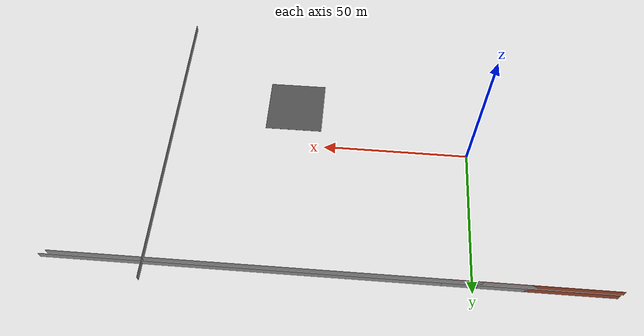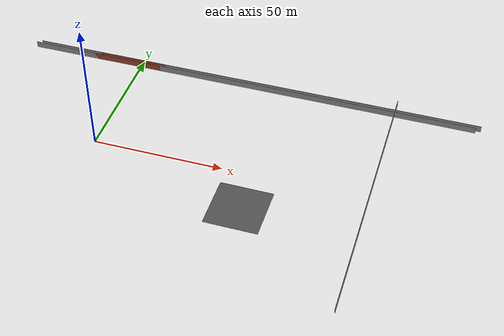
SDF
<sdf version="1.7">
 <world name="default">
  <model name="ground_plane">
   <static>1</static>
   <link name="link">
    <collision name="collision">
     <geometry><plane><normal>0 0 1</normal><size>100 100</size></plane></geometry>
     <surface><friction><ode><mu>100</mu><mu2>50</mu2></ode></friction></surface>
    </collision>
   </link>
  </model>
  <model name="asphalt_plane_74">
   <static>1</static>
   <pose>61.581 -16.664 0 0 -0 0</pose>
   <link name="link">
    <visual name="visual">
     <geometry><box><size>20 20 0.05</size></box></geometry>
     <material>
      <script>
       <uri>model://asphalt_plane/materials/scripts</uri>
       <uri>model://asphalt_plane/materials/textures</uri>
       <name>vrc/asphalt</name>
      </script>
     </material>
    </visual>
   </link>
  </model>
  <model name="wall1_clone">
   <link name="Wall_0">
    <pose>-47.43 -1.8725 0 0 -0 0</pose>
    <visual name="Wall_0_Visual">
     <pose>0 0 1.25 0 -0 0</pose>
     <geometry><box><size>0.16 0.15 2.5</size></box></geometry>
     <material>
      <script><uri>file://media/materials/scripts/gazebo.material</uri><name>Gazebo/Grey</name></script>
      <ambient>1 1 1 1</ambient>
      <shader type="pixel"/>
     </material>
     <meta><layer>0</layer></meta>
    </visual>
    <collision name="Wall_0_Collision">
     <pose>0 0 1.25 0 -0 0</pose>
     <geometry><box><size>0.16 0.15 2.5</size></box></geometry>
     <surface>
      <friction>
       <ode><mu>1</mu><mu2>1</mu2><fdir1>0 0 0</fdir1><slip1>0</slip1><slip2>0</slip2></ode>
       <torsional>
        <coefficient>1</coefficient>
        <patch_radius>0</patch_radius>
        <surface_radius>0</surface_radius>
        <use_patch_radius>1</use_patch_radius>
        <ode><slip>0</slip></ode>
       </torsional>
      </friction>
      <bounce><restitution_coefficient>0</restitution_coefficient><threshold>1e+06</threshold></bounce>
      <contact>
       <collide_without_contact>0</collide_without_contact>
       <collide_without_contact_bitmask>1</collide_without_contact_bitmask>
       <collide_bitmask>1</collide_bitmask>
       <ode>
        <soft_cfm>0</soft_cfm>
        <soft_erp>0.2</soft_erp>
        <kp>1e+13</kp>
        <kd>1</kd>
        <max_vel>0.01</max_vel>
        <min_depth>0</min_depth>
       </ode>
       <bullet>
        <split_impulse>1</split_impulse>
        <split_impulse_penetration_threshold>-0.01</split_impulse_penetration_threshold>
        <soft_cfm>0</soft_cfm>
        <soft_erp>0.2</soft_erp>
        <kp>1e+13</kp>
        <kd>1</kd>
       </bullet>
      </contact>
     </surface>
    </collision>
   </link>
   <link name="Wall_1">
    <pose>-42 -1.8725 0 0 -0 0</pose>
    <visual name="Wall_1_Visual">
     <pose>0 0 1.25 0 -0 0</pose>
     <geometry><box><size>11 0.15 2.5</size></box></geometry>
     <material>
      <script><uri>file://media/materials/scripts/gazebo.material</uri><name>Gazebo/Grey</name></script>
      <ambient>1 1 1 1</ambient>
      <shader type="pixel"/>
     </material>
     <meta><layer>0</layer></meta>
    </visual>
    <collision name="Wall_1_Collision">
     <pose>0 0 1.25 0 -0 0</pose>
     <geometry><box><size>11 0.15 2.5</size></box></geometry>
     <surface>
      <friction>
       <ode><mu>1</mu><mu2>1</mu2><fdir1>0 0 0</fdir1><slip1>0</slip1><slip2>0</slip2></ode>
       <torsional>
        <coefficient>1</coefficient>
        <patch_radius>0</patch_radius>
        <surface_radius>0</surface_radius>
        <use_patch_radius>1</use_patch_radius>
        <ode><slip>0</slip></ode>
       </torsional>
      </friction>
      <bounce><restitution_coefficient>0</restitution_coefficient><threshold>1e+06</threshold></bounce>
      <contact>
       <collide_without_contact>0</collide_without_contact>
       <collide_without_contact_bitmask>1</collide_without_contact_bitmask>
       <collide_bitmask>1</collide_bitmask>
       <ode>
        <soft_cfm>0</soft_cfm>
        <soft_erp>0.2</soft_erp>
        <kp>1e+13</kp>
        <kd>1</kd>
        <max_vel>0.01</max_vel>
        <min_depth>0</min_depth>
       </ode>
       <bullet>
        <split_impulse>1</split_impulse>
        <split_impulse_penetration_threshold>-0.01</split_impulse_penetration_threshold>
        <soft_cfm>0</soft_cfm>
        <soft_erp>0.2</soft_erp>
        <kp>1e+13</kp>
        <kd>1</kd>
       </bullet>
      </contact>
     </surface>
    </collision>
   </link>
   <link name="Wall_2">
    <pose>-63.625 -1.8725 0 0 -0 3.14159</pose>
    <visual name="Wall_2_Visual">
     <pose>0 0 1.25 0 -0 0</pose>
     <geometry><box><size>54.25 0.15 2.5</size></box></geometry>
     <material>
      <script><uri>file://media/materials/scripts/gazebo.material</uri><name>Gazebo/Bricks</name></script>
      <ambient>1 1 1 1</ambient>
      <shader type="pixel"/>
     </material>
     <meta><layer>0</layer></meta>
    </visual>
    <collision name="Wall_2_Collision">
     <pose>0 0 1.25 0 -0 0</pose>
     <geometry><box><size>54.25 0.15 2.5</size></box></geometry>
     <surface>
      <friction>
       <ode><mu>1</mu><mu2>1</mu2><fdir1>0 0 0</fdir1><slip1>0</slip1><slip2>0</slip2></ode>
       <torsional>
        <coefficient>1</coefficient>
        <patch_radius>0</patch_radius>
        <surface_radius>0</surface_radius>
        <use_patch_radius>1</use_patch_radius>
        <ode><slip>0</slip></ode>
       </torsional>
      </friction>
      <bounce><restitution_coefficient>0</restitution_coefficient><threshold>1e+06</threshold></bounce>
      <contact>
       <collide_without_contact>0</collide_without_contact>
       <collide_without_contact_bitmask>1</collide_without_contact_bitmask>
       <collide_bitmask>1</collide_bitmask>
       <ode>
        <soft_cfm>0</soft_cfm>
        <soft_erp>0.2</soft_erp>
        <kp>1e+13</kp>
        <kd>1</kd>
        <max_vel>0.01</max_vel>
        <min_depth>0</min_depth>
       </ode>
       <bullet>
        <split_impulse>1</split_impulse>
        <split_impulse_penetration_threshold>-0.01</split_impulse_penetration_threshold>
        <soft_cfm>0</soft_cfm>
        <soft_erp>0.2</soft_erp>
        <kp>1e+13</kp>
        <kd>1</kd>
       </bullet>
      </contact>
     </surface>
    </collision>
   </link>
   <link name="Wall_3">
    <pose>4e-06 -1.8725 0 0 -0 0</pose>
    <visual name="Wall_3_Visual">
     <pose>0 0 1.25 0 -0 0</pose>
     <geometry><box><size>181.5 0.15 2.5</size></box></geometry>
     <material>
      <script><uri>file://media/materials/scripts/gazebo.material</uri><name>Gazebo/Grey</name></script>
      <ambient>1 1 1 1</ambient>
      <shader type="pixel"/>
     </material>
     <meta><layer>0</layer></meta>
    </visual>
    <collision name="Wall_3_Collision">
     <pose>0 0 1.25 0 -0 0</pose>
     <geometry><box><size>181.5 0.15 2.5</size></box></geometry>
     <surface>
      <friction>
       <ode><mu>1</mu><mu2>1</mu2><fdir1>0 0 0</fdir1><slip1>0</slip1><slip2>0</slip2></ode>
       <torsional>
        <coefficient>1</coefficient>
        <patch_radius>0</patch_radius>
        <surface_radius>0</surface_radius>
        <use_patch_radius>1</use_patch_radius>
        <ode><slip>0</slip></ode>
       </torsional>
      </friction>
      <bounce><restitution_coefficient>0</restitution_coefficient><threshold>1e+06</threshold></bounce>
      <contact>
       <collide_without_contact>0</collide_without_contact>
       <collide_without_contact_bitmask>1</collide_without_contact_bitmask>
       <collide_bitmask>1</collide_bitmask>
       <ode>
        <soft_cfm>0</soft_cfm>
        <soft_erp>0.2</soft_erp>
        <kp>1e+13</kp>
        <kd>1</kd>
        <max_vel>0.01</max_vel>
        <min_depth>0</min_depth>
       </ode>
       <bullet>
        <split_impulse>1</split_impulse>
        <split_impulse_penetration_threshold>-0.01</split_impulse_penetration_threshold>
        <soft_cfm>0</soft_cfm>
        <soft_erp>0.2</soft_erp>
        <kp>1e+13</kp>
        <kd>1</kd>
       </bullet>
      </contact>
     </surface>
    </collision>
   </link>
   <static>1</static>
   <pose>46.1234 50.0533 0 0 -0 0</pose>
  </model>
  <model name="wall22">
   <pose>74.7211 0.977778 0 0 -0 1.57587</pose>
   <link name="Wall_8">
    <collision name="Wall_8_Collision">
     <geometry><box><size>105 0.15 2.5</size></box></geometry>
     <pose>0 0 1.25 0 -0 0</pose>
    </collision>
    <visual name="Wall_8_Visual">
     <pose>0 0 1.25 0 -0 0</pose>
     <geometry><box><size>105 0.15 2.5</size></box></geometry>
     <material>
      <script><uri>file://media/materials/scripts/gazebo.material</uri><name>Gazebo/Grey</name></script>
      <ambient>1 1 1 1</ambient>
     </material>
     <meta><layer>0</layer></meta>
    </visual>
    <pose>0 -29.4763 0 0 -0 0</pose>
   </link>
   <static>1</static>
  </model>
  <model name="wall1_clone_clone">
   <link name="Wall_0">
    <pose>-47.43 -1.8725 0 0 -0 0</pose>
    <visual name="Wall_0_Visual">
     <pose>0 0 1.25 0 -0 0</pose>
     <geometry><box><size>0.16 0.15 2.5</size></box></geometry>
     <material>
      <script><uri>file://media/materials/scripts/gazebo.material</uri><name>Gazebo/Grey</name></script>
      <ambient>1 1 1 1</ambient>
      <shader type="pixel"/>
     </material>
     <meta><layer>0</layer></meta>
    </visual>
    <collision name="Wall_0_Collision">
     <pose>0 0 1.25 0 -0 0</pose>
     <geometry><box><size>0.16 0.15 2.5</size></box></geometry>
     <surface>
      <friction>
       <ode><mu>1</mu><mu2>1</mu2><fdir1>0 0 0</fdir1><slip1>0</slip1><slip2>0</slip2></ode>
       <torsional>
        <coefficient>1</coefficient>
        <patch_radius>0</patch_radius>
        <surface_radius>0</surface_radius>
        <use_patch_radius>1</use_patch_radius>
        <ode><slip>0</slip></ode>
       </torsional>
      </friction>
      <bounce><restitution_coefficient>0</restitution_coefficient><threshold>1e+06</threshold></bounce>
      <contact>
       <collide_without_contact>0</collide_without_contact>
       <collide_without_contact_bitmask>1</collide_without_contact_bitmask>
       <collide_bitmask>1</collide_bitmask>
       <ode>
        <soft_cfm>0</soft_cfm>
        <soft_erp>0.2</soft_erp>
        <kp>1e+13</kp>
        <kd>1</kd>
        <max_vel>0.01</max_vel>
        <min_depth>0</min_depth>
       </ode>
       <bullet>
        <split_impulse>1</split_impulse>
        <split_impulse_penetration_threshold>-0.01</split_impulse_penetration_threshold>
        <soft_cfm>0</soft_cfm>
        <soft_erp>0.2</soft_erp>
        <kp>1e+13</kp>
        <kd>1</kd>
       </bullet>
      </contact>
     </surface>
    </collision>
   </link>
   <link name="Wall_1">
    <pose>-42 -1.8725 0 0 -0 0</pose>
    <visual name="Wall_1_Visual">
     <pose>0 0 1.25 0 -0 0</pose>
     <geometry><box><size>11 0.15 2.5</size></box></geometry>
     <material>
      <script><uri>file://media/materials/scripts/gazebo.material</uri><name>Gazebo/Grey</name></script>
      <ambient>1 1 1 1</ambient>
      <shader type="pixel"/>
     </material>
     <meta><layer>0</layer></meta>
    </visual>
    <collision name="Wall_1_Collision">
     <pose>0 0 1.25 0 -0 0</pose>
     <geometry><box><size>11 0.15 2.5</size></box></geometry>
     <surface>
      <friction>
       <ode><mu>1</mu><mu2>1</mu2><fdir1>0 0 0</fdir1><slip1>0</slip1><slip2>0</slip2></ode>
       <torsional>
        <coefficient>1</coefficient>
        <patch_radius>0</patch_radius>
        <surface_radius>0</surface_radius>
        <use_patch_radius>1</use_patch_radius>
        <ode><slip>0</slip></ode>
       </torsional>
      </friction>
      <bounce><restitution_coefficient>0</restitution_coefficient><threshold>1e+06</threshold></bounce>
      <contact>
       <collide_without_contact>0</collide_without_contact>
       <collide_without_contact_bitmask>1</collide_without_contact_bitmask>
       <collide_bitmask>1</collide_bitmask>
       <ode>
        <soft_cfm>0</soft_cfm>
        <soft_erp>0.2</soft_erp>
        <kp>1e+13</kp>
        <kd>1</kd>
        <max_vel>0.01</max_vel>
        <min_depth>0</min_depth>
       </ode>
       <bullet>
        <split_impulse>1</split_impulse>
        <split_impulse_penetration_threshold>-0.01</split_impulse_penetration_threshold>
        <soft_cfm>0</soft_cfm>
        <soft_erp>0.2</soft_erp>
        <kp>1e+13</kp>
        <kd>1</kd>
       </bullet>
      </contact>
     </surface>
    </collision>
   </link>
   <link name="Wall_2">
    <pose>-63.625 -1.8725 0 0 -0 3.14159</pose>
    <visual name="Wall_2_Visual">
     <pose>0 0 1.25 0 -0 0</pose>
     <geometry><box><size>54.25 0.15 2.5</size></box></geometry>
     <material>
      <script><uri>file://media/materials/scripts/gazebo.material</uri><name>Gazebo/Bricks</name></script>
      <ambient>1 1 1 1</ambient>
      <shader type="pixel"/>
     </material>
     <meta><layer>0</layer></meta>
    </visual>
    <collision name="Wall_2_Collision">
     <pose>0 0 1.25 0 -0 0</pose>
     <geometry><box><size>54.25 0.15 2.5</size></box></geometry>
     <surface>
      <friction>
       <ode><mu>1</mu><mu2>1</mu2><fdir1>0 0 0</fdir1><slip1>0</slip1><slip2>0</slip2></ode>
       <torsional>
        <coefficient>1</coefficient>
        <patch_radius>0</patch_radius>
        <surface_radius>0</surface_radius>
        <use_patch_radius>1</use_patch_radius>
        <ode><slip>0</slip></ode>
       </torsional>
      </friction>
      <bounce><restitution_coefficient>0</restitution_coefficient><threshold>1e+06</threshold></bounce>
      <contact>
       <collide_without_contact>0</collide_without_contact>
       <collide_without_contact_bitmask>1</collide_without_contact_bitmask>
       <collide_bitmask>1</collide_bitmask>
       <ode>
        <soft_cfm>0</soft_cfm>
        <soft_erp>0.2</soft_erp>
        <kp>1e+13</kp>
        <kd>1</kd>
        <max_vel>0.01</max_vel>
        <min_depth>0</min_depth>
       </ode>
       <bullet>
        <split_impulse>1</split_impulse>
        <split_impulse_penetration_threshold>-0.01</split_impulse_penetration_threshold>
        <soft_cfm>0</soft_cfm>
        <soft_erp>0.2</soft_erp>
        <kp>1e+13</kp>
        <kd>1</kd>
       </bullet>
      </contact>
     </surface>
    </collision>
   </link>
   <link name="Wall_3">
    <pose>4e-06 -1.8725 0 0 -0 0</pose>
    <visual name="Wall_3_Visual">
     <pose>0 0 1.25 0 -0 0</pose>
     <geometry><box><size>181.5 0.15 2.5</size></box></geometry>
     <material>
      <script><uri>file://media/materials/scripts/gazebo.material</uri><name>Gazebo/Grey</name></script>
      <ambient>1 1 1 1</ambient>
      <shader type="pixel"/>
     </material>
     <meta><layer>0</layer></meta>
    </visual>
    <collision name="Wall_3_Collision">
     <pose>0 0 1.25 0 -0 0</pose>
     <geometry><box><size>181.5 0.15 2.5</size></box></geometry>
     <surface>
      <friction>
       <ode><mu>1</mu><mu2>1</mu2><fdir1>0 0 0</fdir1><slip1>0</slip1><slip2>0</slip2></ode>
       <torsional>
        <coefficient>1</coefficient>
        <patch_radius>0</patch_radius>
        <surface_radius>0</surface_radius>
        <use_patch_radius>1</use_patch_radius>
        <ode><slip>0</slip></ode>
       </torsional>
      </friction>
      <bounce><restitution_coefficient>0</restitution_coefficient><threshold>1e+06</threshold></bounce>
      <contact>
       <collide_without_contact>0</collide_without_contact>
       <collide_without_contact_bitmask>1</collide_without_contact_bitmask>
       <collide_bitmask>1</collide_bitmask>
       <ode>
        <soft_cfm>0</soft_cfm>
        <soft_erp>0.2</soft_erp>
        <kp>1e+13</kp>
        <kd>1</kd>
        <max_vel>0.01</max_vel>
        <min_depth>0</min_depth>
       </ode>
       <bullet>
        <split_impulse>1</split_impulse>
        <split_impulse_penetration_threshold>-0.01</split_impulse_penetration_threshold>
        <soft_cfm>0</soft_cfm>
        <soft_erp>0.2</soft_erp>
        <kp>1e+13</kp>
        <kd>1</kd>
       </bullet>
      </contact>
     </surface>
    </collision>
   </link>
   <static>1</static>
   <pose>44.2383 48.7535 0 0 -0 0</pose>
  </model>
 </world>
</sdf>
